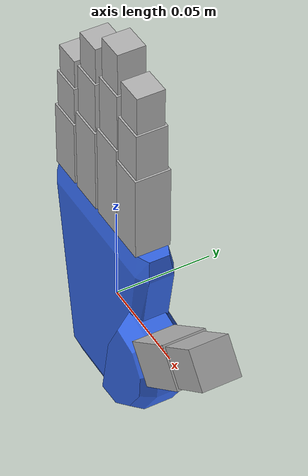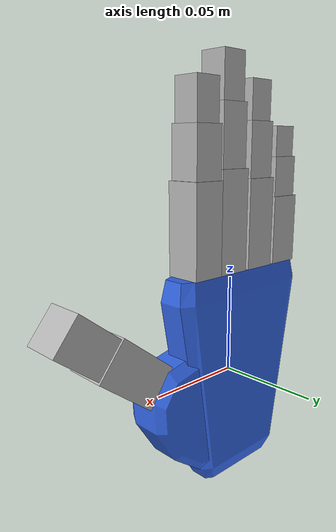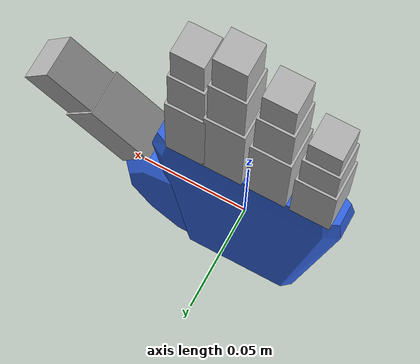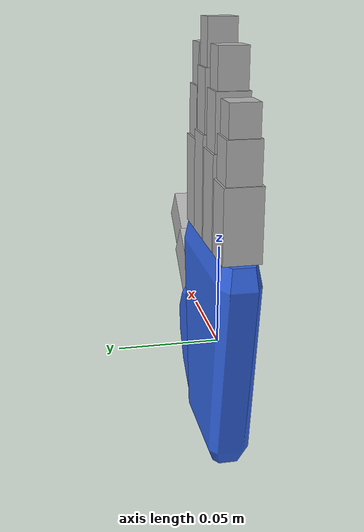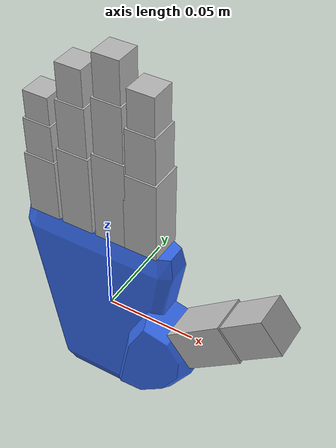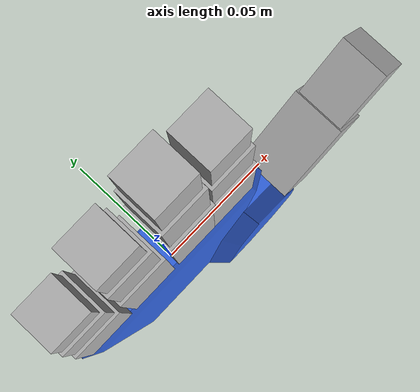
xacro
<?xml version="1.0"?>
<robot xmlns:xacro="http://www.ros.org/wiki/xacro"
       name="robot_hand">

  <!-- Materials -->
  <material name="blue">
    <color rgba="0.2 0.4 0.9 1"/>
  </material>

  <material name="gray">
    <color rgba="0.7 0.7 0.7 1"/>
  </material>

  <!-- Palm -->
  <link name="palm">
    <visual>
      <geometry>
        <mesh filename="package://robot_hand_description/meshes/palm.stl"/>
      </geometry>
      <material name="blue"/>
    </visual>
  </link>

  <!-- CMC opposition carries the blue pad and every downstream thumb joint. -->
  <joint name="thumb_opposition" type="revolute">
    <parent link="palm"/>
    <child link="thenar"/>
    <origin xyz="0.018 0 -0.035"/>
    <axis xyz="0 0 -1"/>
    <limit lower="0" upper="1.2" effort="1" velocity="1"/>
  </joint>
  <link name="thenar">
    <!-- Offset preserves the pad's existing resting placement. -->
    <visual name="thumb_pad">
      <origin xyz="-0.018 0 0.035"/>
      <geometry>
        <mesh filename="package://robot_hand_description/meshes/thumb_pad.stl"/>
      </geometry>
      <material name="blue"/>
    </visual>
  </link>

  <!-- Reusable three-segment finger -->
  <xacro:macro name="finger"
               params="name x z l1 l2 l3 angle:=0">

    <!-- Abduction/adduction precedes flexion at the same MCP pivot. -->
    <link name="${name}_knuckle"/>
    <joint name="${name}_spread" type="revolute">
      <parent link="palm"/>
      <child link="${name}_knuckle"/>
      <origin xyz="${x} 0 ${z}" rpy="0 ${angle} 0"/>
      <axis xyz="0 1 0"/>
      <limit lower="-0.45" upper="0.45" effort="1" velocity="1"/>
    </joint>
    <!-- Proximal segment -->
    <link name="${name}_proximal">
      <visual>
        <origin xyz="0 0 ${l1/2}"/>
        <geometry>
          <box size="0.018 0.018 ${l1}"/>
        </geometry>
        <material name="gray"/>
      </visual>
    </link>

    <joint name="${name}_mcp" type="revolute">
      <parent link="${name}_knuckle"/>
      <child link="${name}_proximal"/>
      <axis xyz="1 0 0"/>
      <limit lower="0" upper="1.57"
             effort="1" velocity="1"/>
    </joint>

    <!-- Middle segment -->
    <link name="${name}_middle">
      <visual>
        <origin xyz="0 0 ${l2/2}"/>
        <geometry>
          <box size="0.016 0.016 ${l2}"/>
        </geometry>
        <material name="gray"/>
      </visual>
    </link>

    <joint name="${name}_pip" type="revolute">
      <parent link="${name}_proximal"/>
      <child link="${name}_middle"/>
      <origin xyz="0 0 ${l1}"/>
      <axis xyz="1 0 0"/>
      <limit lower="0" upper="1.75"
             effort="1" velocity="1"/>
    </joint>

    <!-- Distal segment -->
    <link name="${name}_distal">
      <visual>
        <origin xyz="0 0 ${l3/2}"/>
        <geometry>
          <box size="0.014 0.014 ${l3}"/>
        </geometry>
        <material name="gray"/>
      </visual>
    </link>

    <joint name="${name}_dip" type="revolute">
      <parent link="${name}_middle"/>
      <child link="${name}_distal"/>
      <origin xyz="0 0 ${l2}"/>
      <axis xyz="1 0 0"/>
      <limit lower="0" upper="1.4"
             effort="1" velocity="1"/>
    </joint>

  </xacro:macro>

  <!-- Four fingers -->
  <xacro:finger name="index"
                x="0.025" z="0.055"
                l1="0.045" l2="0.025" l3="0.020"/>

  <xacro:finger name="middle"
                x="0.008" z="0.055"
                l1="0.050" l2="0.030" l3="0.022"/>

  <xacro:finger name="ring"
                x="-0.012" z="0.055"
                l1="0.045" l2="0.027" l3="0.019"/>

  <xacro:finger name="pinky"
                x="-0.032" z="0.055"
                l1="0.035" l2="0.020" l3="0.015"/>

  <!-- Sideways thumb rotation is independent from the two existing bends. -->
  <link name="thumb_knuckle"/>
  <joint name="thumb_spread" type="revolute">
    <parent link="thenar"/>
    <child link="thumb_knuckle"/>
    <origin xyz="0.034 -0.006 0.042" rpy="0 0.9 0"/>
    <axis xyz="0 1 0"/>
    <limit lower="-0.8" upper="0.8" effort="1" velocity="1"/>
  </joint>
  <!-- Simplified two-segment thumb -->
  <link name="thumb_proximal">
    <visual>
      <origin xyz="0 0 0.0175"/>
      <geometry>
        <box size="0.022 0.022 0.035"/>
      </geometry>
      <material name="gray"/>
    </visual>
  </link>

  <joint name="thumb_base" type="revolute">
    <parent link="thumb_knuckle"/>
    <child link="thumb_proximal"/>
    <axis xyz="1 0 0"/>
    <limit lower="0" upper="1.57"
           effort="1" velocity="1"/>
  </joint>

  <link name="thumb_distal">
    <visual>
      <origin xyz="0 0 0.013"/>
      <geometry>
        <box size="0.020 0.020 0.026"/>
      </geometry>
      <material name="gray"/>
    </visual>
  </link>

  <joint name="thumb_ip" type="revolute">
    <parent link="thumb_proximal"/>
    <child link="thumb_distal"/>
    <origin xyz="0 0 0.035"/>
    <axis xyz="1 0 0"/>
    <limit lower="0" upper="1.4"
           effort="1" velocity="1"/>
  </joint>

</robot>
